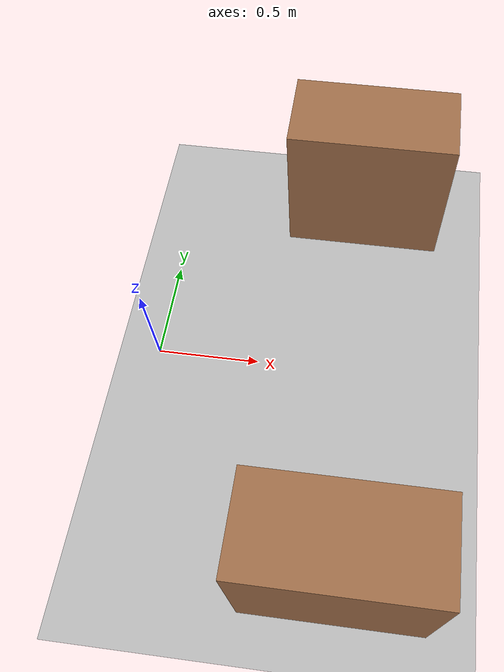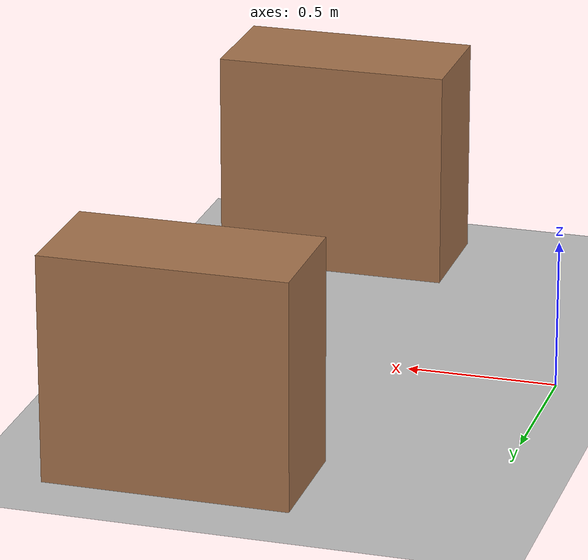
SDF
<?xml version="1.0" ?>
<sdf version='1.10'>
  <world name='table_world'>
    <scene>
      <ambient>0.5 0.5 0.5 1</ambient>
      <background>0.800000012 0.800000012 0.800000012 1</background>
      <shadows>true</shadows>
    </scene>
    <gravity>0 0 -9.8000000000000007</gravity>
    <magnetic_field>5.5644999999999998e-06 2.2875799999999999e-05 -4.2388400000000002e-05</magnetic_field>
    <atmosphere type='adiabatic'/>
    <physics type='ode'>
      <max_step_size>0.001</max_step_size>
      <real_time_factor>1</real_time_factor>
      <real_time_update_rate>1000</real_time_update_rate>
    </physics>
    <model name='ground_plane'>
      <static>true</static>
      <link name='link'>
        <collision name='collision'>
          <geometry>
            <plane>
              <normal>0 0 1</normal>
              <size>50 50</size>
            </plane>
          </geometry>
          <surface>
            <friction>
              <ode/>
            </friction>
            <bounce/>
            <contact/>
          </surface>
        </collision>
        <visual name='visual'>
          <geometry>
            <plane>
              <normal>0 0 1</normal>
              <size>50 50</size>
            </plane>
          </geometry>
          <material>
            <ambient>0.75 0.75 0.75 1</ambient>
            <diffuse>0.75 0.75 0.75 1</diffuse>
            <specular>0.0500000007 0.0500000007 0.0500000007 1</specular>
          </material>
        </visual>
        <pose>0 0 0 0 0 0</pose>
        <inertial>
          <pose>0 0 0 0 0 0</pose>
          <mass>1</mass>
          <inertia>
            <ixx>1</ixx>
            <ixy>0</ixy>
            <ixz>0</ixz>
            <iyy>1</iyy>
            <iyz>0</iyz>
            <izz>1</izz>
          </inertia>
        </inertial>
        <enable_wind>false</enable_wind>
      </link>
      <pose>0 0 0 0 0 0</pose>
      <self_collide>false</self_collide>
    </model>
    <model name='table_1'>
      <static>true</static>
      <pose>0.9974822048094345 -0.98086019424291448 0.375 0 0 0</pose>
      <link name='link'>
        <collision name='collision'>
          <geometry>
            <box>
              <size>0.80000000000000004 0.40000000000000002 0.75</size>
            </box>
          </geometry>
          <surface>
            <friction>
              <ode/>
            </friction>
            <bounce/>
            <contact/>
          </surface>
        </collision>
        <visual name='visual'>
          <geometry>
            <box>
              <size>0.80000000000000004 0.40000000000000002 0.75</size>
            </box>
          </geometry>
          <material>
            <ambient>0.550000012 0.400000006 0.25 1</ambient>
            <diffuse>0.649999976 0.449999988 0.300000012 1</diffuse>
            <specular>0.100000001 0.100000001 0.100000001 1</specular>
          </material>
        </visual>
      </link>
      <self_collide>false</self_collide>
    </model>
    <model name='table_2'>
      <static>true</static>
      <pose>0.9549463124832398 0.99540616163657414 0.375 0 0 0</pose>
      <link name='link'>
        <collision name='collision'>
          <geometry>
            <box>
              <size>0.80000000000000004 0.40000000000000002 0.75</size>
            </box>
          </geometry>
          <surface>
            <friction>
              <ode/>
            </friction>
            <bounce/>
            <contact/>
          </surface>
        </collision>
        <visual name='visual'>
          <geometry>
            <box>
              <size>0.80000000000000004 0.40000000000000002 0.75</size>
            </box>
          </geometry>
          <material>
            <ambient>0.550000012 0.400000006 0.25 1</ambient>
            <diffuse>0.649999976 0.449999988 0.300000012 1</diffuse>
            <specular>0.100000001 0.100000001 0.100000001 1</specular>
          </material>
        </visual>
      </link>
      <self_collide>false</self_collide>
    </model>
    <light name='sun' type='directional'>
      <pose>0 0 10 0 0 0</pose>
      <cast_shadows>false</cast_shadows>
      <intensity>1</intensity>
      <direction>-0.5 0.10000000000000001 -1</direction>
      <diffuse>1 1 1 1</diffuse>
      <specular>0.100000001 0.100000001 0.100000001 1</specular>
      <attenuation>
        <range>10</range>
        <linear>1</linear>
        <constant>1</constant>
        <quadratic>0</quadratic>
      </attenuation>
      <spot>
        <inner_angle>0</inner_angle>
        <outer_angle>0</outer_angle>
        <falloff>0</falloff>
      </spot>
    </light>
  </world>
</sdf>
